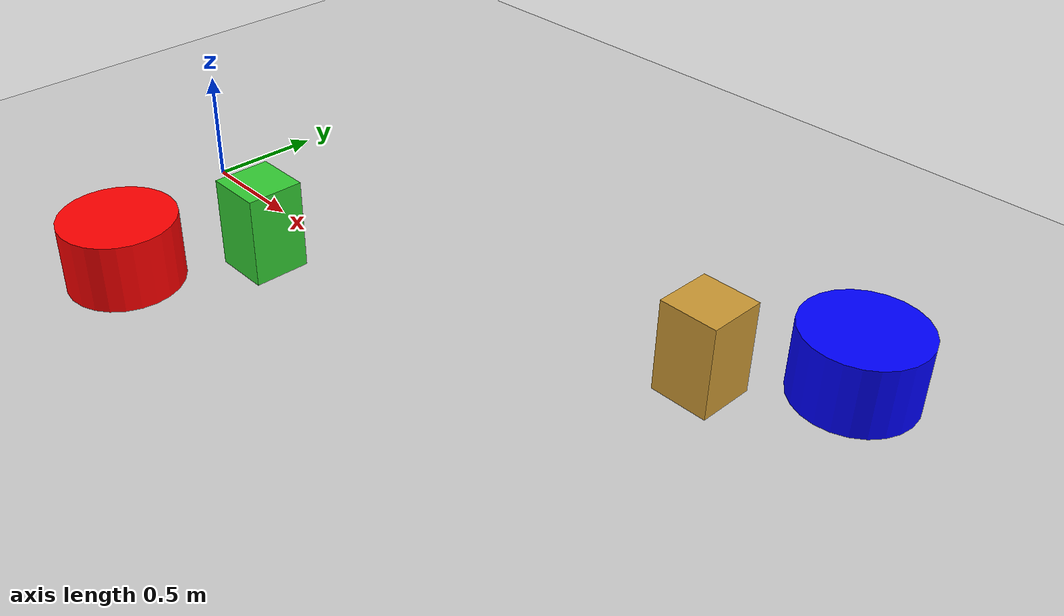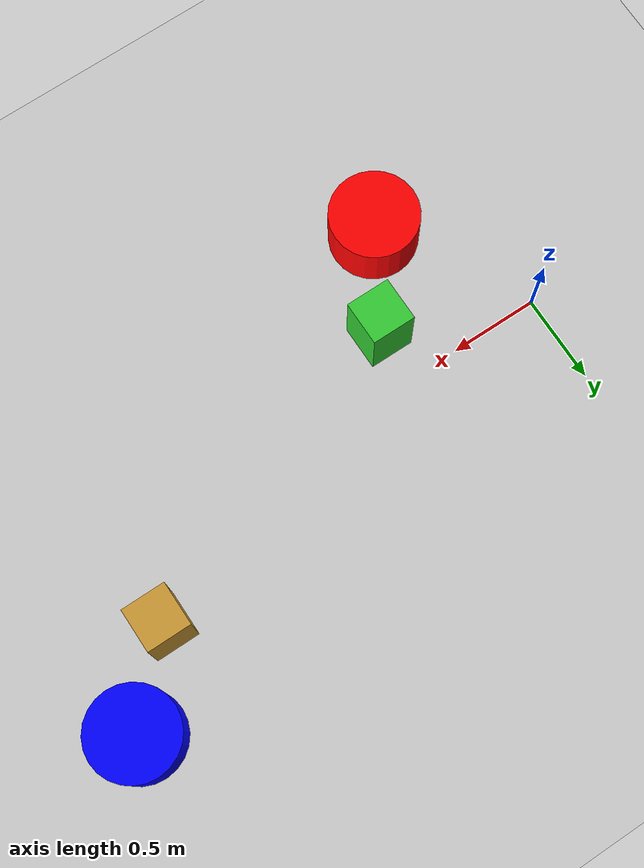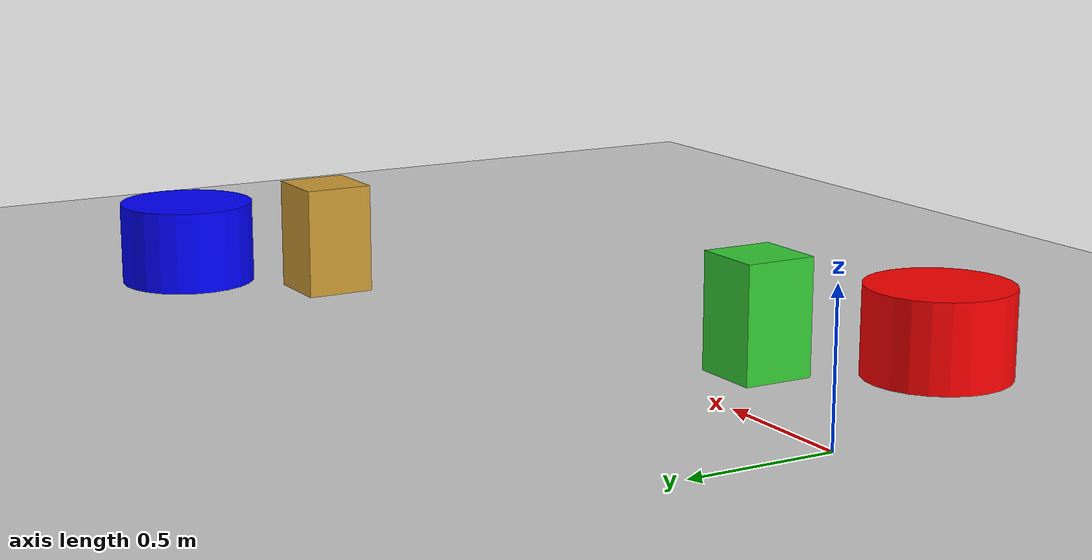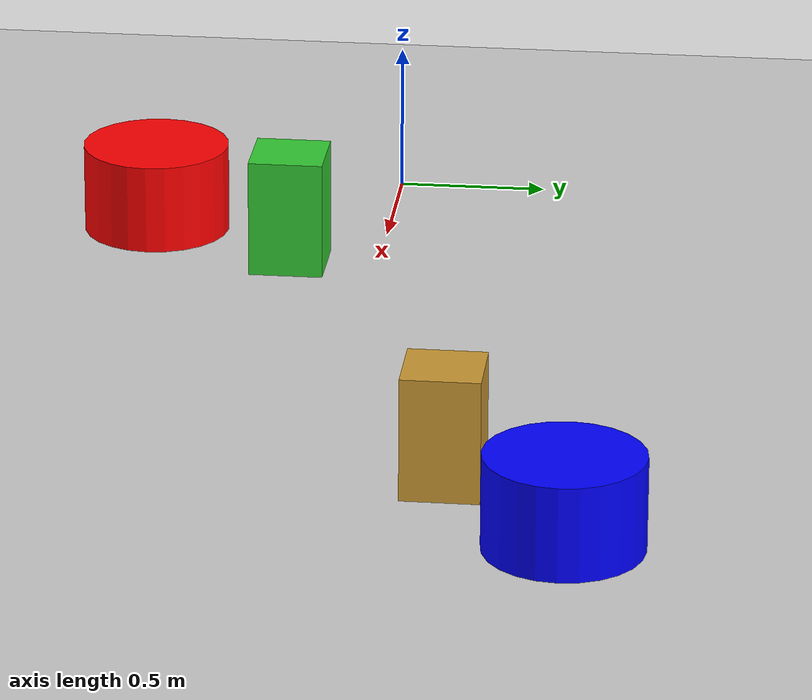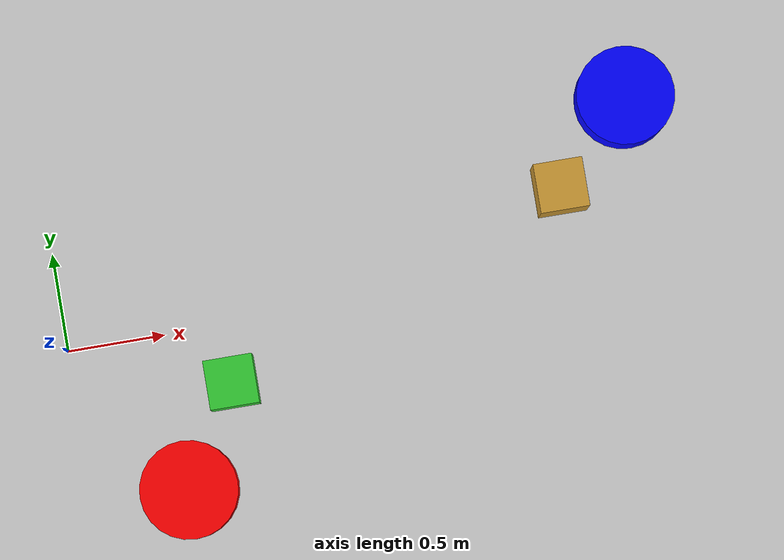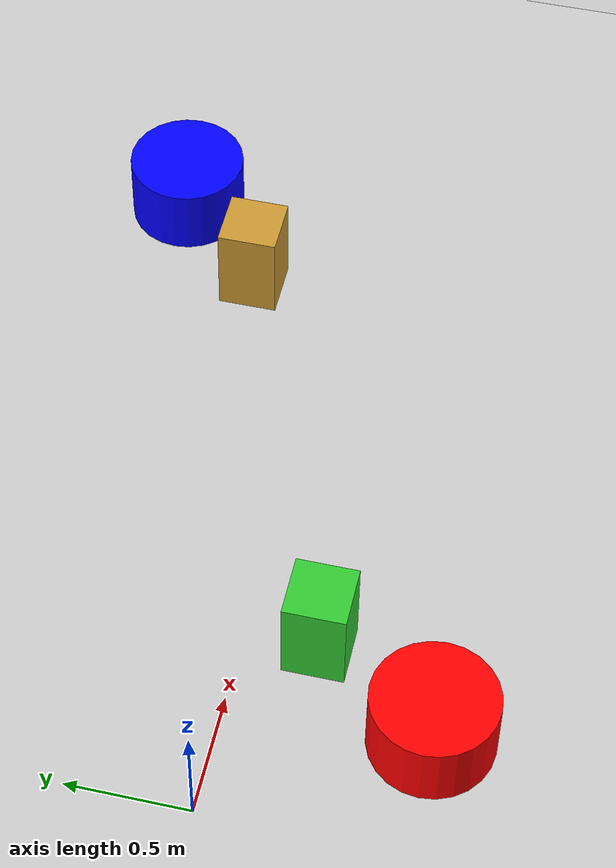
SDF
<sdf version="1.6">
 <world name="adr_world">
  <include><uri>model://ground_plane</uri></include>
  <include><uri>model://sun</uri></include>
  <model name="small_obstacle_1">
   <static>true</static>
   <link name="link">
    <collision name="collision"><geometry><box><size>0.25 0.25 0.4</size></box></geometry></collision>
    <visual name="visual">
     <geometry><box><size>0.25 0.25 0.4</size></box></geometry>
     <material><ambient>0.2 0.8 0.2 1</ambient><diffuse>0.2 0.8 0.2 1</diffuse></material>
    </visual>
   </link>
   <pose>0.8 -0.3 0.2 0 0 0</pose>
  </model>
  <model name="small_obstacle_2">
   <static>true</static>
   <link name="link">
    <collision name="collision"><geometry><box><size>0.25 0.25 0.4</size></box></geometry></collision>
    <visual name="visual">
     <geometry><box><size>0.25 0.25 0.4</size></box></geometry>
     <material><ambient>0.8 0.6 0.2 1</ambient><diffuse>0.8 0.6 0.2 1</diffuse></material>
    </visual>
   </link>
   <pose>2.6 0.4 0.2 0 0 0</pose>
  </model>
  <model name="location_C">
   <static>true</static>
   <pose>0.5 -0.8 0.1 0 0 0</pose>
   <link name="link">
    <visual name="visual">
     <geometry><cylinder><radius>0.25</radius><length>0.4</length></cylinder></geometry>
     <material><ambient>1 0 0 1</ambient><diffuse>1 0 0 1</diffuse></material>
    </visual>
   </link>
  </model>
  <model name="location_D">
   <static>true</static>
   <pose>3.0 0.8 0.1 0 0 0</pose>
   <link name="link">
    <visual name="visual">
     <geometry><cylinder><radius>0.25</radius><length>0.4</length></cylinder></geometry>
     <material><ambient>0 0 1 1</ambient><diffuse>0 0 1 1</diffuse></material>
    </visual>
   </link>
  </model>
 </world>
</sdf>
